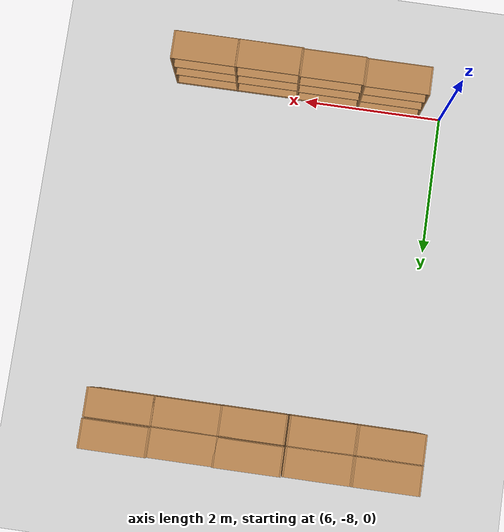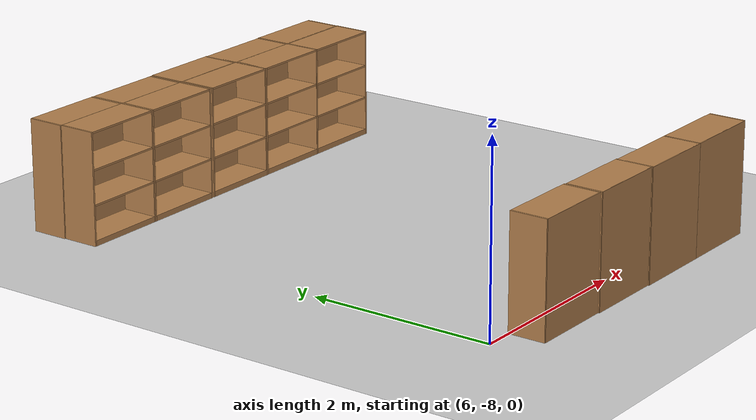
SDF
<sdf version="1.7">
 <world name="default">
  <model name="ground_plane">
   <static>1</static>
   <link name="ground_link">
    <collision name="collision">
     <geometry><plane><normal>0 0 1</normal><size>100 100</size></plane></geometry>
     <surface><friction><ode><mu>100</mu><mu2>50</mu2></ode></friction></surface>
    </collision>
    <visual name="visual">
     <cast_shadows>0</cast_shadows>
     <geometry><plane><normal>0 0 1</normal><size>100 100</size></plane></geometry>
     <material>
      <script><uri>file://media/materials/scripts/gazebo.material</uri><name>Gazebo/Grey</name></script>
     </material>
    </visual>
   </link>
  </model>
  <model name="bookshelf_clone_0_clone_0_clone_clone">
   <static>1</static>
   <link name="link">
    <inertial><mass>1</mass></inertial>
    <collision name="back">
     <pose>0 0.005 0.6 0 -0 0</pose>
     <geometry><box><size>0.9 0.01 1.2</size></box></geometry>
    </collision>
    <visual name="visual1">
     <pose>0 0.005 0.6 0 -0 0</pose>
     <geometry><box><size>0.9 0.01 1.2</size></box></geometry>
     <material>
      <script><uri>file://media/materials/scripts/gazebo.material</uri><name>Gazebo/Wood</name></script>
     </material>
    </visual>
    <collision name="left_side">
     <pose>0.45 -0.195 0.6 0 -0 0</pose>
     <geometry><box><size>0.02 0.4 1.2</size></box></geometry>
    </collision>
    <visual name="visual2">
     <pose>0.45 -0.195 0.6 0 -0 0</pose>
     <geometry><box><size>0.02 0.4 1.2</size></box></geometry>
     <material>
      <script><uri>file://media/materials/scripts/gazebo.material</uri><name>Gazebo/Wood</name></script>
     </material>
    </visual>
    <collision name="right_side">
     <pose>-0.45 -0.195 0.6 0 -0 0</pose>
     <geometry><box><size>0.02 0.4 1.2</size></box></geometry>
    </collision>
    <visual name="visual3">
     <pose>-0.45 -0.195 0.6 0 -0 0</pose>
     <geometry><box><size>0.02 0.4 1.2</size></box></geometry>
     <material>
      <script><uri>file://media/materials/scripts/gazebo.material</uri><name>Gazebo/Wood</name></script>
     </material>
    </visual>
    <collision name="bottom">
     <pose>0 -0.195 0.03 0 -0 0</pose>
     <geometry><box><size>0.88 0.4 0.06</size></box></geometry>
    </collision>
    <visual name="visual4">
     <pose>0 -0.195 0.03 0 -0 0</pose>
     <geometry><box><size>0.88 0.4 0.06</size></box></geometry>
     <material>
      <script><uri>file://media/materials/scripts/gazebo.material</uri><name>Gazebo/Wood</name></script>
     </material>
    </visual>
    <collision name="top">
     <pose>0 -0.195 1.19 0 -0 0</pose>
     <geometry><box><size>0.88 0.4 0.02</size></box></geometry>
    </collision>
    <visual name="visual5">
     <pose>0 -0.195 1.19 0 -0 0</pose>
     <geometry><box><size>0.88 0.4 0.02</size></box></geometry>
     <material>
      <script><uri>file://media/materials/scripts/gazebo.material</uri><name>Gazebo/Wood</name></script>
     </material>
    </visual>
    <collision name="low_shelf">
     <pose>0 -0.195 0.43 0 -0 0</pose>
     <geometry><box><size>0.88 0.4 0.02</size></box></geometry>
    </collision>
    <visual name="visual6">
     <pose>0 -0.195 0.43 0 -0 0</pose>
     <geometry><box><size>0.88 0.4 0.02</size></box></geometry>
     <material>
      <script><uri>file://media/materials/scripts/gazebo.material</uri><name>Gazebo/Wood</name></script>
     </material>
    </visual>
    <collision name="high_shelf">
     <pose>0 -0.195 0.8 0 -0 0</pose>
     <geometry><box><size>0.88 0.4 0.02</size></box></geometry>
    </collision>
    <visual name="visual7">
     <pose>0 -0.195 0.8 0 -0 0</pose>
     <geometry><box><size>0.88 0.4 0.02</size></box></geometry>
     <material>
      <script><uri>file://media/materials/scripts/gazebo.material</uri><name>Gazebo/Wood</name></script>
     </material>
    </visual>
   </link>
   <pose>8.09166 -2.97864 0 0 0 -3.14107</pose>
  </model>
  <model name="bookshelf_clone_0_clone_0_clone_clone_clone">
   <static>1</static>
   <link name="link">
    <inertial><mass>1</mass></inertial>
    <collision name="back">
     <pose>0 0.005 0.6 0 -0 0</pose>
     <geometry><box><size>0.9 0.01 1.2</size></box></geometry>
    </collision>
    <visual name="visual1">
     <pose>0 0.005 0.6 0 -0 0</pose>
     <geometry><box><size>0.9 0.01 1.2</size></box></geometry>
     <material>
      <script><uri>file://media/materials/scripts/gazebo.material</uri><name>Gazebo/Wood</name></script>
     </material>
    </visual>
    <collision name="left_side">
     <pose>0.45 -0.195 0.6 0 -0 0</pose>
     <geometry><box><size>0.02 0.4 1.2</size></box></geometry>
    </collision>
    <visual name="visual2">
     <pose>0.45 -0.195 0.6 0 -0 0</pose>
     <geometry><box><size>0.02 0.4 1.2</size></box></geometry>
     <material>
      <script><uri>file://media/materials/scripts/gazebo.material</uri><name>Gazebo/Wood</name></script>
     </material>
    </visual>
    <collision name="right_side">
     <pose>-0.45 -0.195 0.6 0 -0 0</pose>
     <geometry><box><size>0.02 0.4 1.2</size></box></geometry>
    </collision>
    <visual name="visual3">
     <pose>-0.45 -0.195 0.6 0 -0 0</pose>
     <geometry><box><size>0.02 0.4 1.2</size></box></geometry>
     <material>
      <script><uri>file://media/materials/scripts/gazebo.material</uri><name>Gazebo/Wood</name></script>
     </material>
    </visual>
    <collision name="bottom">
     <pose>0 -0.195 0.03 0 -0 0</pose>
     <geometry><box><size>0.88 0.4 0.06</size></box></geometry>
    </collision>
    <visual name="visual4">
     <pose>0 -0.195 0.03 0 -0 0</pose>
     <geometry><box><size>0.88 0.4 0.06</size></box></geometry>
     <material>
      <script><uri>file://media/materials/scripts/gazebo.material</uri><name>Gazebo/Wood</name></script>
     </material>
    </visual>
    <collision name="top">
     <pose>0 -0.195 1.19 0 -0 0</pose>
     <geometry><box><size>0.88 0.4 0.02</size></box></geometry>
    </collision>
    <visual name="visual5">
     <pose>0 -0.195 1.19 0 -0 0</pose>
     <geometry><box><size>0.88 0.4 0.02</size></box></geometry>
     <material>
      <script><uri>file://media/materials/scripts/gazebo.material</uri><name>Gazebo/Wood</name></script>
     </material>
    </visual>
    <collision name="low_shelf">
     <pose>0 -0.195 0.43 0 -0 0</pose>
     <geometry><box><size>0.88 0.4 0.02</size></box></geometry>
    </collision>
    <visual name="visual6">
     <pose>0 -0.195 0.43 0 -0 0</pose>
     <geometry><box><size>0.88 0.4 0.02</size></box></geometry>
     <material>
      <script><uri>file://media/materials/scripts/gazebo.material</uri><name>Gazebo/Wood</name></script>
     </material>
    </visual>
    <collision name="high_shelf">
     <pose>0 -0.195 0.8 0 -0 0</pose>
     <geometry><box><size>0.88 0.4 0.02</size></box></geometry>
    </collision>
    <visual name="visual7">
     <pose>0 -0.195 0.8 0 -0 0</pose>
     <geometry><box><size>0.88 0.4 0.02</size></box></geometry>
     <material>
      <script><uri>file://media/materials/scripts/gazebo.material</uri><name>Gazebo/Wood</name></script>
     </material>
    </visual>
   </link>
   <pose>6.23979 -2.98685 0 0 0 -3.14107</pose>
  </model>
  <model name="bookshelf_clone_0_clone_0_clone_clone_clone_clone">
   <static>1</static>
   <link name="link">
    <inertial><mass>1</mass></inertial>
    <collision name="back">
     <pose>0 0.005 0.6 0 -0 0</pose>
     <geometry><box><size>0.9 0.01 1.2</size></box></geometry>
    </collision>
    <visual name="visual1">
     <pose>0 0.005 0.6 0 -0 0</pose>
     <geometry><box><size>0.9 0.01 1.2</size></box></geometry>
     <material>
      <script><uri>file://media/materials/scripts/gazebo.material</uri><name>Gazebo/Wood</name></script>
     </material>
    </visual>
    <collision name="left_side">
     <pose>0.45 -0.195 0.6 0 -0 0</pose>
     <geometry><box><size>0.02 0.4 1.2</size></box></geometry>
    </collision>
    <visual name="visual2">
     <pose>0.45 -0.195 0.6 0 -0 0</pose>
     <geometry><box><size>0.02 0.4 1.2</size></box></geometry>
     <material>
      <script><uri>file://media/materials/scripts/gazebo.material</uri><name>Gazebo/Wood</name></script>
     </material>
    </visual>
    <collision name="right_side">
     <pose>-0.45 -0.195 0.6 0 -0 0</pose>
     <geometry><box><size>0.02 0.4 1.2</size></box></geometry>
    </collision>
    <visual name="visual3">
     <pose>-0.45 -0.195 0.6 0 -0 0</pose>
     <geometry><box><size>0.02 0.4 1.2</size></box></geometry>
     <material>
      <script><uri>file://media/materials/scripts/gazebo.material</uri><name>Gazebo/Wood</name></script>
     </material>
    </visual>
    <collision name="bottom">
     <pose>0 -0.195 0.03 0 -0 0</pose>
     <geometry><box><size>0.88 0.4 0.06</size></box></geometry>
    </collision>
    <visual name="visual4">
     <pose>0 -0.195 0.03 0 -0 0</pose>
     <geometry><box><size>0.88 0.4 0.06</size></box></geometry>
     <material>
      <script><uri>file://media/materials/scripts/gazebo.material</uri><name>Gazebo/Wood</name></script>
     </material>
    </visual>
    <collision name="top">
     <pose>0 -0.195 1.19 0 -0 0</pose>
     <geometry><box><size>0.88 0.4 0.02</size></box></geometry>
    </collision>
    <visual name="visual5">
     <pose>0 -0.195 1.19 0 -0 0</pose>
     <geometry><box><size>0.88 0.4 0.02</size></box></geometry>
     <material>
      <script><uri>file://media/materials/scripts/gazebo.material</uri><name>Gazebo/Wood</name></script>
     </material>
    </visual>
    <collision name="low_shelf">
     <pose>0 -0.195 0.43 0 -0 0</pose>
     <geometry><box><size>0.88 0.4 0.02</size></box></geometry>
    </collision>
    <visual name="visual6">
     <pose>0 -0.195 0.43 0 -0 0</pose>
     <geometry><box><size>0.88 0.4 0.02</size></box></geometry>
     <material>
      <script><uri>file://media/materials/scripts/gazebo.material</uri><name>Gazebo/Wood</name></script>
     </material>
    </visual>
    <collision name="high_shelf">
     <pose>0 -0.195 0.8 0 -0 0</pose>
     <geometry><box><size>0.88 0.4 0.02</size></box></geometry>
    </collision>
    <visual name="visual7">
     <pose>0 -0.195 0.8 0 -0 0</pose>
     <geometry><box><size>0.88 0.4 0.02</size></box></geometry>
     <material>
      <script><uri>file://media/materials/scripts/gazebo.material</uri><name>Gazebo/Wood</name></script>
     </material>
    </visual>
   </link>
   <pose>7.1578 -2.98828 0 0 0 -3.14107</pose>
  </model>
  <model name="bookshelf_clone_0_clone_0_clone_clone_clone_clone_clone_1_clone_clone_clone_clone_clone_clone_clone_clone_clone_clone_0_clone_clone_clone_clone_clone_0_clone_1_clone_2">
   <static>1</static>
   <link name="link">
    <inertial><mass>1</mass></inertial>
    <collision name="back">
     <pose>0 0.005 0.6 0 -0 0</pose>
     <geometry><box><size>0.9 0.01 1.2</size></box></geometry>
    </collision>
    <visual name="visual1">
     <pose>0 0.005 0.6 0 -0 0</pose>
     <geometry><box><size>0.9 0.01 1.2</size></box></geometry>
     <material>
      <script><uri>file://media/materials/scripts/gazebo.material</uri><name>Gazebo/Wood</name></script>
     </material>
    </visual>
    <collision name="left_side">
     <pose>0.45 -0.195 0.6 0 -0 0</pose>
     <geometry><box><size>0.02 0.4 1.2</size></box></geometry>
    </collision>
    <visual name="visual2">
     <pose>0.45 -0.195 0.6 0 -0 0</pose>
     <geometry><box><size>0.02 0.4 1.2</size></box></geometry>
     <material>
      <script><uri>file://media/materials/scripts/gazebo.material</uri><name>Gazebo/Wood</name></script>
     </material>
    </visual>
    <collision name="right_side">
     <pose>-0.45 -0.195 0.6 0 -0 0</pose>
     <geometry><box><size>0.02 0.4 1.2</size></box></geometry>
    </collision>
    <visual name="visual3">
     <pose>-0.45 -0.195 0.6 0 -0 0</pose>
     <geometry><box><size>0.02 0.4 1.2</size></box></geometry>
     <material>
      <script><uri>file://media/materials/scripts/gazebo.material</uri><name>Gazebo/Wood</name></script>
     </material>
    </visual>
    <collision name="bottom">
     <pose>0 -0.195 0.03 0 -0 0</pose>
     <geometry><box><size>0.88 0.4 0.06</size></box></geometry>
    </collision>
    <visual name="visual4">
     <pose>0 -0.195 0.03 0 -0 0</pose>
     <geometry><box><size>0.88 0.4 0.06</size></box></geometry>
     <material>
      <script><uri>file://media/materials/scripts/gazebo.material</uri><name>Gazebo/Wood</name></script>
     </material>
    </visual>
    <collision name="top">
     <pose>0 -0.195 1.19 0 -0 0</pose>
     <geometry><box><size>0.88 0.4 0.02</size></box></geometry>
    </collision>
    <visual name="visual5">
     <pose>0 -0.195 1.19 0 -0 0</pose>
     <geometry><box><size>0.88 0.4 0.02</size></box></geometry>
     <material>
      <script><uri>file://media/materials/scripts/gazebo.material</uri><name>Gazebo/Wood</name></script>
     </material>
    </visual>
    <collision name="low_shelf">
     <pose>0 -0.195 0.43 0 -0 0</pose>
     <geometry><box><size>0.88 0.4 0.02</size></box></geometry>
    </collision>
    <visual name="visual6">
     <pose>0 -0.195 0.43 0 -0 0</pose>
     <geometry><box><size>0.88 0.4 0.02</size></box></geometry>
     <material>
      <script><uri>file://media/materials/scripts/gazebo.material</uri><name>Gazebo/Wood</name></script>
     </material>
    </visual>
    <collision name="high_shelf">
     <pose>0 -0.195 0.8 0 -0 0</pose>
     <geometry><box><size>0.88 0.4 0.02</size></box></geometry>
    </collision>
    <visual name="visual7">
     <pose>0 -0.195 0.8 0 -0 0</pose>
     <geometry><box><size>0.88 0.4 0.02</size></box></geometry>
     <material>
      <script><uri>file://media/materials/scripts/gazebo.material</uri><name>Gazebo/Wood</name></script>
     </material>
    </visual>
   </link>
   <pose>6.24111 -3.009 0.004614 0 -0 0.000147</pose>
  </model>
  <model name="bookshelf_clone_0_clone_0_clone_clone_clone_clone_clone_1_clone_clone_clone_clone_clone_clone_clone_clone_clone_clone_0_clone_clone_clone_clone_clone_0_clone_1_clone_2_clone">
   <static>1</static>
   <link name="link">
    <inertial><mass>1</mass></inertial>
    <collision name="back">
     <pose>0 0.005 0.6 0 -0 0</pose>
     <geometry><box><size>0.9 0.01 1.2</size></box></geometry>
    </collision>
    <visual name="visual1">
     <pose>0 0.005 0.6 0 -0 0</pose>
     <geometry><box><size>0.9 0.01 1.2</size></box></geometry>
     <material>
      <script><uri>file://media/materials/scripts/gazebo.material</uri><name>Gazebo/Wood</name></script>
     </material>
    </visual>
    <collision name="left_side">
     <pose>0.45 -0.195 0.6 0 -0 0</pose>
     <geometry><box><size>0.02 0.4 1.2</size></box></geometry>
    </collision>
    <visual name="visual2">
     <pose>0.45 -0.195 0.6 0 -0 0</pose>
     <geometry><box><size>0.02 0.4 1.2</size></box></geometry>
     <material>
      <script><uri>file://media/materials/scripts/gazebo.material</uri><name>Gazebo/Wood</name></script>
     </material>
    </visual>
    <collision name="right_side">
     <pose>-0.45 -0.195 0.6 0 -0 0</pose>
     <geometry><box><size>0.02 0.4 1.2</size></box></geometry>
    </collision>
    <visual name="visual3">
     <pose>-0.45 -0.195 0.6 0 -0 0</pose>
     <geometry><box><size>0.02 0.4 1.2</size></box></geometry>
     <material>
      <script><uri>file://media/materials/scripts/gazebo.material</uri><name>Gazebo/Wood</name></script>
     </material>
    </visual>
    <collision name="bottom">
     <pose>0 -0.195 0.03 0 -0 0</pose>
     <geometry><box><size>0.88 0.4 0.06</size></box></geometry>
    </collision>
    <visual name="visual4">
     <pose>0 -0.195 0.03 0 -0 0</pose>
     <geometry><box><size>0.88 0.4 0.06</size></box></geometry>
     <material>
      <script><uri>file://media/materials/scripts/gazebo.material</uri><name>Gazebo/Wood</name></script>
     </material>
    </visual>
    <collision name="top">
     <pose>0 -0.195 1.19 0 -0 0</pose>
     <geometry><box><size>0.88 0.4 0.02</size></box></geometry>
    </collision>
    <visual name="visual5">
     <pose>0 -0.195 1.19 0 -0 0</pose>
     <geometry><box><size>0.88 0.4 0.02</size></box></geometry>
     <material>
      <script><uri>file://media/materials/scripts/gazebo.material</uri><name>Gazebo/Wood</name></script>
     </material>
    </visual>
    <collision name="low_shelf">
     <pose>0 -0.195 0.43 0 -0 0</pose>
     <geometry><box><size>0.88 0.4 0.02</size></box></geometry>
    </collision>
    <visual name="visual6">
     <pose>0 -0.195 0.43 0 -0 0</pose>
     <geometry><box><size>0.88 0.4 0.02</size></box></geometry>
     <material>
      <script><uri>file://media/materials/scripts/gazebo.material</uri><name>Gazebo/Wood</name></script>
     </material>
    </visual>
    <collision name="high_shelf">
     <pose>0 -0.195 0.8 0 -0 0</pose>
     <geometry><box><size>0.88 0.4 0.02</size></box></geometry>
    </collision>
    <visual name="visual7">
     <pose>0 -0.195 0.8 0 -0 0</pose>
     <geometry><box><size>0.88 0.4 0.02</size></box></geometry>
     <material>
      <script><uri>file://media/materials/scripts/gazebo.material</uri><name>Gazebo/Wood</name></script>
     </material>
    </visual>
   </link>
   <pose>7.15854 -3.009 0.004614 0 -0 0.000147</pose>
  </model>
  <model name="bookshelf_clone_0_clone_0_clone_clone_clone_clone_clone_1_clone_clone_clone_clone_clone_clone_clone_clone_clone_clone_0_clone_clone_clone_clone_clone_0_clone_1_clone_2_clone_0">
   <static>1</static>
   <link name="link">
    <inertial><mass>1</mass></inertial>
    <collision name="back">
     <pose>0 0.005 0.6 0 -0 0</pose>
     <geometry><box><size>0.9 0.01 1.2</size></box></geometry>
    </collision>
    <visual name="visual1">
     <pose>0 0.005 0.6 0 -0 0</pose>
     <geometry><box><size>0.9 0.01 1.2</size></box></geometry>
     <material>
      <script><uri>file://media/materials/scripts/gazebo.material</uri><name>Gazebo/Wood</name></script>
     </material>
    </visual>
    <collision name="left_side">
     <pose>0.45 -0.195 0.6 0 -0 0</pose>
     <geometry><box><size>0.02 0.4 1.2</size></box></geometry>
    </collision>
    <visual name="visual2">
     <pose>0.45 -0.195 0.6 0 -0 0</pose>
     <geometry><box><size>0.02 0.4 1.2</size></box></geometry>
     <material>
      <script><uri>file://media/materials/scripts/gazebo.material</uri><name>Gazebo/Wood</name></script>
     </material>
    </visual>
    <collision name="right_side">
     <pose>-0.45 -0.195 0.6 0 -0 0</pose>
     <geometry><box><size>0.02 0.4 1.2</size></box></geometry>
    </collision>
    <visual name="visual3">
     <pose>-0.45 -0.195 0.6 0 -0 0</pose>
     <geometry><box><size>0.02 0.4 1.2</size></box></geometry>
     <material>
      <script><uri>file://media/materials/scripts/gazebo.material</uri><name>Gazebo/Wood</name></script>
     </material>
    </visual>
    <collision name="bottom">
     <pose>0 -0.195 0.03 0 -0 0</pose>
     <geometry><box><size>0.88 0.4 0.06</size></box></geometry>
    </collision>
    <visual name="visual4">
     <pose>0 -0.195 0.03 0 -0 0</pose>
     <geometry><box><size>0.88 0.4 0.06</size></box></geometry>
     <material>
      <script><uri>file://media/materials/scripts/gazebo.material</uri><name>Gazebo/Wood</name></script>
     </material>
    </visual>
    <collision name="top">
     <pose>0 -0.195 1.19 0 -0 0</pose>
     <geometry><box><size>0.88 0.4 0.02</size></box></geometry>
    </collision>
    <visual name="visual5">
     <pose>0 -0.195 1.19 0 -0 0</pose>
     <geometry><box><size>0.88 0.4 0.02</size></box></geometry>
     <material>
      <script><uri>file://media/materials/scripts/gazebo.material</uri><name>Gazebo/Wood</name></script>
     </material>
    </visual>
    <collision name="low_shelf">
     <pose>0 -0.195 0.43 0 -0 0</pose>
     <geometry><box><size>0.88 0.4 0.02</size></box></geometry>
    </collision>
    <visual name="visual6">
     <pose>0 -0.195 0.43 0 -0 0</pose>
     <geometry><box><size>0.88 0.4 0.02</size></box></geometry>
     <material>
      <script><uri>file://media/materials/scripts/gazebo.material</uri><name>Gazebo/Wood</name></script>
     </material>
    </visual>
    <collision name="high_shelf">
     <pose>0 -0.195 0.8 0 -0 0</pose>
     <geometry><box><size>0.88 0.4 0.02</size></box></geometry>
    </collision>
    <visual name="visual7">
     <pose>0 -0.195 0.8 0 -0 0</pose>
     <geometry><box><size>0.88 0.4 0.02</size></box></geometry>
     <material>
      <script><uri>file://media/materials/scripts/gazebo.material</uri><name>Gazebo/Wood</name></script>
     </material>
    </visual>
   </link>
   <pose>8.09797 -3.009 0.004614 0 -0 0.000147</pose>
  </model>
  <model name="bookshelf_clone_0_clone_0_clone_clone_clone_clone_clone_1_clone_clone_clone_clone_clone_clone_clone_clone_clone_clone_0_clone_clone_clone_clone_clone_0_clone_1_clone_2_clone_0_clone">
   <static>1</static>
   <link name="link">
    <inertial><mass>1</mass></inertial>
    <collision name="back">
     <pose>0 0.005 0.6 0 -0 0</pose>
     <geometry><box><size>0.9 0.01 1.2</size></box></geometry>
    </collision>
    <visual name="visual1">
     <pose>0 0.005 0.6 0 -0 0</pose>
     <geometry><box><size>0.9 0.01 1.2</size></box></geometry>
     <material>
      <script><uri>file://media/materials/scripts/gazebo.material</uri><name>Gazebo/Wood</name></script>
     </material>
    </visual>
    <collision name="left_side">
     <pose>0.45 -0.195 0.6 0 -0 0</pose>
     <geometry><box><size>0.02 0.4 1.2</size></box></geometry>
    </collision>
    <visual name="visual2">
     <pose>0.45 -0.195 0.6 0 -0 0</pose>
     <geometry><box><size>0.02 0.4 1.2</size></box></geometry>
     <material>
      <script><uri>file://media/materials/scripts/gazebo.material</uri><name>Gazebo/Wood</name></script>
     </material>
    </visual>
    <collision name="right_side">
     <pose>-0.45 -0.195 0.6 0 -0 0</pose>
     <geometry><box><size>0.02 0.4 1.2</size></box></geometry>
    </collision>
    <visual name="visual3">
     <pose>-0.45 -0.195 0.6 0 -0 0</pose>
     <geometry><box><size>0.02 0.4 1.2</size></box></geometry>
     <material>
      <script><uri>file://media/materials/scripts/gazebo.material</uri><name>Gazebo/Wood</name></script>
     </material>
    </visual>
    <collision name="bottom">
     <pose>0 -0.195 0.03 0 -0 0</pose>
     <geometry><box><size>0.88 0.4 0.06</size></box></geometry>
    </collision>
    <visual name="visual4">
     <pose>0 -0.195 0.03 0 -0 0</pose>
     <geometry><box><size>0.88 0.4 0.06</size></box></geometry>
     <material>
      <script><uri>file://media/materials/scripts/gazebo.material</uri><name>Gazebo/Wood</name></script>
     </material>
    </visual>
    <collision name="top">
     <pose>0 -0.195 1.19 0 -0 0</pose>
     <geometry><box><size>0.88 0.4 0.02</size></box></geometry>
    </collision>
    <visual name="visual5">
     <pose>0 -0.195 1.19 0 -0 0</pose>
     <geometry><box><size>0.88 0.4 0.02</size></box></geometry>
     <material>
      <script><uri>file://media/materials/scripts/gazebo.material</uri><name>Gazebo/Wood</name></script>
     </material>
    </visual>
    <collision name="low_shelf">
     <pose>0 -0.195 0.43 0 -0 0</pose>
     <geometry><box><size>0.88 0.4 0.02</size></box></geometry>
    </collision>
    <visual name="visual6">
     <pose>0 -0.195 0.43 0 -0 0</pose>
     <geometry><box><size>0.88 0.4 0.02</size></box></geometry>
     <material>
      <script><uri>file://media/materials/scripts/gazebo.material</uri><name>Gazebo/Wood</name></script>
     </material>
    </visual>
    <collision name="high_shelf">
     <pose>0 -0.195 0.8 0 -0 0</pose>
     <geometry><box><size>0.88 0.4 0.02</size></box></geometry>
    </collision>
    <visual name="visual7">
     <pose>0 -0.195 0.8 0 -0 0</pose>
     <geometry><box><size>0.88 0.4 0.02</size></box></geometry>
     <material>
      <script><uri>file://media/materials/scripts/gazebo.material</uri><name>Gazebo/Wood</name></script>
     </material>
    </visual>
   </link>
   <pose>8.98045 -3.00741 0.004614 0 -0 0.000147</pose>
  </model>
  <model name="bookshelf_clone_0_clone_0_clone_clone_clone_0">
   <static>1</static>
   <link name="link">
    <inertial><mass>1</mass></inertial>
    <collision name="back">
     <pose>0 0.005 0.6 0 -0 0</pose>
     <geometry><box><size>0.9 0.01 1.2</size></box></geometry>
    </collision>
    <visual name="visual1">
     <pose>0 0.005 0.6 0 -0 0</pose>
     <geometry><box><size>0.9 0.01 1.2</size></box></geometry>
     <material>
      <script><uri>file://media/materials/scripts/gazebo.material</uri><name>Gazebo/Wood</name></script>
     </material>
    </visual>
    <collision name="left_side">
     <pose>0.45 -0.195 0.6 0 -0 0</pose>
     <geometry><box><size>0.02 0.4 1.2</size></box></geometry>
    </collision>
    <visual name="visual2">
     <pose>0.45 -0.195 0.6 0 -0 0</pose>
     <geometry><box><size>0.02 0.4 1.2</size></box></geometry>
     <material>
      <script><uri>file://media/materials/scripts/gazebo.material</uri><name>Gazebo/Wood</name></script>
     </material>
    </visual>
    <collision name="right_side">
     <pose>-0.45 -0.195 0.6 0 -0 0</pose>
     <geometry><box><size>0.02 0.4 1.2</size></box></geometry>
    </collision>
    <visual name="visual3">
     <pose>-0.45 -0.195 0.6 0 -0 0</pose>
     <geometry><box><size>0.02 0.4 1.2</size></box></geometry>
     <material>
      <script><uri>file://media/materials/scripts/gazebo.material</uri><name>Gazebo/Wood</name></script>
     </material>
    </visual>
    <collision name="bottom">
     <pose>0 -0.195 0.03 0 -0 0</pose>
     <geometry><box><size>0.88 0.4 0.06</size></box></geometry>
    </collision>
    <visual name="visual4">
     <pose>0 -0.195 0.03 0 -0 0</pose>
     <geometry><box><size>0.88 0.4 0.06</size></box></geometry>
     <material>
      <script><uri>file://media/materials/scripts/gazebo.material</uri><name>Gazebo/Wood</name></script>
     </material>
    </visual>
    <collision name="top">
     <pose>0 -0.195 1.19 0 -0 0</pose>
     <geometry><box><size>0.88 0.4 0.02</size></box></geometry>
    </collision>
    <visual name="visual5">
     <pose>0 -0.195 1.19 0 -0 0</pose>
     <geometry><box><size>0.88 0.4 0.02</size></box></geometry>
     <material>
      <script><uri>file://media/materials/scripts/gazebo.material</uri><name>Gazebo/Wood</name></script>
     </material>
    </visual>
    <collision name="low_shelf">
     <pose>0 -0.195 0.43 0 -0 0</pose>
     <geometry><box><size>0.88 0.4 0.02</size></box></geometry>
    </collision>
    <visual name="visual6">
     <pose>0 -0.195 0.43 0 -0 0</pose>
     <geometry><box><size>0.88 0.4 0.02</size></box></geometry>
     <material>
      <script><uri>file://media/materials/scripts/gazebo.material</uri><name>Gazebo/Wood</name></script>
     </material>
    </visual>
    <collision name="high_shelf">
     <pose>0 -0.195 0.8 0 -0 0</pose>
     <geometry><box><size>0.88 0.4 0.02</size></box></geometry>
    </collision>
    <visual name="visual7">
     <pose>0 -0.195 0.8 0 -0 0</pose>
     <geometry><box><size>0.88 0.4 0.02</size></box></geometry>
     <material>
      <script><uri>file://media/materials/scripts/gazebo.material</uri><name>Gazebo/Wood</name></script>
     </material>
    </visual>
   </link>
   <pose>8.97687 -2.98648 0 0 0 -3.14107</pose>
  </model>
  <model name="bookshelf_clone_clone_1_clone_clone_0_clone_clone">
   <static>1</static>
   <link name="link">
    <inertial><mass>1</mass></inertial>
    <collision name="back">
     <pose>0 0.005 0.6 0 -0 0</pose>
     <geometry><box><size>0.9 0.01 1.2</size></box></geometry>
    </collision>
    <visual name="visual1">
     <pose>0 0.005 0.6 0 -0 0</pose>
     <geometry><box><size>0.9 0.01 1.2</size></box></geometry>
     <material>
      <script><uri>file://media/materials/scripts/gazebo.material</uri><name>Gazebo/Wood</name></script>
     </material>
    </visual>
    <collision name="left_side">
     <pose>0.45 -0.195 0.6 0 -0 0</pose>
     <geometry><box><size>0.02 0.4 1.2</size></box></geometry>
    </collision>
    <visual name="visual2">
     <pose>0.45 -0.195 0.6 0 -0 0</pose>
     <geometry><box><size>0.02 0.4 1.2</size></box></geometry>
     <material>
      <script><uri>file://media/materials/scripts/gazebo.material</uri><name>Gazebo/Wood</name></script>
     </material>
    </visual>
    <collision name="right_side">
     <pose>-0.45 -0.195 0.6 0 -0 0</pose>
     <geometry><box><size>0.02 0.4 1.2</size></box></geometry>
    </collision>
    <visual name="visual3">
     <pose>-0.45 -0.195 0.6 0 -0 0</pose>
     <geometry><box><size>0.02 0.4 1.2</size></box></geometry>
     <material>
      <script><uri>file://media/materials/scripts/gazebo.material</uri><name>Gazebo/Wood</name></script>
     </material>
    </visual>
    <collision name="bottom">
     <pose>0 -0.195 0.03 0 -0 0</pose>
     <geometry><box><size>0.88 0.4 0.06</size></box></geometry>
    </collision>
    <visual name="visual4">
     <pose>0 -0.195 0.03 0 -0 0</pose>
     <geometry><box><size>0.88 0.4 0.06</size></box></geometry>
     <material>
      <script><uri>file://media/materials/scripts/gazebo.material</uri><name>Gazebo/Wood</name></script>
     </material>
    </visual>
    <collision name="top">
     <pose>0 -0.195 1.19 0 -0 0</pose>
     <geometry><box><size>0.88 0.4 0.02</size></box></geometry>
    </collision>
    <visual name="visual5">
     <pose>0 -0.195 1.19 0 -0 0</pose>
     <geometry><box><size>0.88 0.4 0.02</size></box></geometry>
     <material>
      <script><uri>file://media/materials/scripts/gazebo.material</uri><name>Gazebo/Wood</name></script>
     </material>
    </visual>
    <collision name="low_shelf">
     <pose>0 -0.195 0.43 0 -0 0</pose>
     <geometry><box><size>0.88 0.4 0.02</size></box></geometry>
    </collision>
    <visual name="visual6">
     <pose>0 -0.195 0.43 0 -0 0</pose>
     <geometry><box><size>0.88 0.4 0.02</size></box></geometry>
     <material>
      <script><uri>file://media/materials/scripts/gazebo.material</uri><name>Gazebo/Wood</name></script>
     </material>
    </visual>
    <collision name="high_shelf">
     <pose>0 -0.195 0.8 0 -0 0</pose>
     <geometry><box><size>0.88 0.4 0.02</size></box></geometry>
    </collision>
    <visual name="visual7">
     <pose>0 -0.195 0.8 0 -0 0</pose>
     <geometry><box><size>0.88 0.4 0.02</size></box></geometry>
     <material>
      <script><uri>file://media/materials/scripts/gazebo.material</uri><name>Gazebo/Wood</name></script>
     </material>
    </visual>
   </link>
   <pose>6.76746 -8.38719 0 0 0 -3.14107</pose>
  </model>
  <model name="bookshelf_clone_clone_1_clone_clone_0_clone_clone_0">
   <static>1</static>
   <link name="link">
    <inertial><mass>1</mass></inertial>
    <collision name="back">
     <pose>0 0.005 0.6 0 -0 0</pose>
     <geometry><box><size>0.9 0.01 1.2</size></box></geometry>
    </collision>
    <visual name="visual1">
     <pose>0 0.005 0.6 0 -0 0</pose>
     <geometry><box><size>0.9 0.01 1.2</size></box></geometry>
     <material>
      <script><uri>file://media/materials/scripts/gazebo.material</uri><name>Gazebo/Wood</name></script>
     </material>
    </visual>
    <collision name="left_side">
     <pose>0.45 -0.195 0.6 0 -0 0</pose>
     <geometry><box><size>0.02 0.4 1.2</size></box></geometry>
    </collision>
    <visual name="visual2">
     <pose>0.45 -0.195 0.6 0 -0 0</pose>
     <geometry><box><size>0.02 0.4 1.2</size></box></geometry>
     <material>
      <script><uri>file://media/materials/scripts/gazebo.material</uri><name>Gazebo/Wood</name></script>
     </material>
    </visual>
    <collision name="right_side">
     <pose>-0.45 -0.195 0.6 0 -0 0</pose>
     <geometry><box><size>0.02 0.4 1.2</size></box></geometry>
    </collision>
    <visual name="visual3">
     <pose>-0.45 -0.195 0.6 0 -0 0</pose>
     <geometry><box><size>0.02 0.4 1.2</size></box></geometry>
     <material>
      <script><uri>file://media/materials/scripts/gazebo.material</uri><name>Gazebo/Wood</name></script>
     </material>
    </visual>
    <collision name="bottom">
     <pose>0 -0.195 0.03 0 -0 0</pose>
     <geometry><box><size>0.88 0.4 0.06</size></box></geometry>
    </collision>
    <visual name="visual4">
     <pose>0 -0.195 0.03 0 -0 0</pose>
     <geometry><box><size>0.88 0.4 0.06</size></box></geometry>
     <material>
      <script><uri>file://media/materials/scripts/gazebo.material</uri><name>Gazebo/Wood</name></script>
     </material>
    </visual>
    <collision name="top">
     <pose>0 -0.195 1.19 0 -0 0</pose>
     <geometry><box><size>0.88 0.4 0.02</size></box></geometry>
    </collision>
    <visual name="visual5">
     <pose>0 -0.195 1.19 0 -0 0</pose>
     <geometry><box><size>0.88 0.4 0.02</size></box></geometry>
     <material>
      <script><uri>file://media/materials/scripts/gazebo.material</uri><name>Gazebo/Wood</name></script>
     </material>
    </visual>
    <collision name="low_shelf">
     <pose>0 -0.195 0.43 0 -0 0</pose>
     <geometry><box><size>0.88 0.4 0.02</size></box></geometry>
    </collision>
    <visual name="visual6">
     <pose>0 -0.195 0.43 0 -0 0</pose>
     <geometry><box><size>0.88 0.4 0.02</size></box></geometry>
     <material>
      <script><uri>file://media/materials/scripts/gazebo.material</uri><name>Gazebo/Wood</name></script>
     </material>
    </visual>
    <collision name="high_shelf">
     <pose>0 -0.195 0.8 0 -0 0</pose>
     <geometry><box><size>0.88 0.4 0.02</size></box></geometry>
    </collision>
    <visual name="visual7">
     <pose>0 -0.195 0.8 0 -0 0</pose>
     <geometry><box><size>0.88 0.4 0.02</size></box></geometry>
     <material>
      <script><uri>file://media/materials/scripts/gazebo.material</uri><name>Gazebo/Wood</name></script>
     </material>
    </visual>
   </link>
   <pose>7.68281 -8.40007 0 0 0 -3.14107</pose>
  </model>
  <model name="bookshelf_clone_clone_1_clone_clone_0_clone_clone_1">
   <static>1</static>
   <link name="link">
    <inertial><mass>1</mass></inertial>
    <collision name="back">
     <pose>0 0.005 0.6 0 -0 0</pose>
     <geometry><box><size>0.9 0.01 1.2</size></box></geometry>
    </collision>
    <visual name="visual1">
     <pose>0 0.005 0.6 0 -0 0</pose>
     <geometry><box><size>0.9 0.01 1.2</size></box></geometry>
     <material>
      <script><uri>file://media/materials/scripts/gazebo.material</uri><name>Gazebo/Wood</name></script>
     </material>
    </visual>
    <collision name="left_side">
     <pose>0.45 -0.195 0.6 0 -0 0</pose>
     <geometry><box><size>0.02 0.4 1.2</size></box></geometry>
    </collision>
    <visual name="visual2">
     <pose>0.45 -0.195 0.6 0 -0 0</pose>
     <geometry><box><size>0.02 0.4 1.2</size></box></geometry>
     <material>
      <script><uri>file://media/materials/scripts/gazebo.material</uri><name>Gazebo/Wood</name></script>
     </material>
    </visual>
    <collision name="right_side">
     <pose>-0.45 -0.195 0.6 0 -0 0</pose>
     <geometry><box><size>0.02 0.4 1.2</size></box></geometry>
    </collision>
    <visual name="visual3">
     <pose>-0.45 -0.195 0.6 0 -0 0</pose>
     <geometry><box><size>0.02 0.4 1.2</size></box></geometry>
     <material>
      <script><uri>file://media/materials/scripts/gazebo.material</uri><name>Gazebo/Wood</name></script>
     </material>
    </visual>
    <collision name="bottom">
     <pose>0 -0.195 0.03 0 -0 0</pose>
     <geometry><box><size>0.88 0.4 0.06</size></box></geometry>
    </collision>
    <visual name="visual4">
     <pose>0 -0.195 0.03 0 -0 0</pose>
     <geometry><box><size>0.88 0.4 0.06</size></box></geometry>
     <material>
      <script><uri>file://media/materials/scripts/gazebo.material</uri><name>Gazebo/Wood</name></script>
     </material>
    </visual>
    <collision name="top">
     <pose>0 -0.195 1.19 0 -0 0</pose>
     <geometry><box><size>0.88 0.4 0.02</size></box></geometry>
    </collision>
    <visual name="visual5">
     <pose>0 -0.195 1.19 0 -0 0</pose>
     <geometry><box><size>0.88 0.4 0.02</size></box></geometry>
     <material>
      <script><uri>file://media/materials/scripts/gazebo.material</uri><name>Gazebo/Wood</name></script>
     </material>
    </visual>
    <collision name="low_shelf">
     <pose>0 -0.195 0.43 0 -0 0</pose>
     <geometry><box><size>0.88 0.4 0.02</size></box></geometry>
    </collision>
    <visual name="visual6">
     <pose>0 -0.195 0.43 0 -0 0</pose>
     <geometry><box><size>0.88 0.4 0.02</size></box></geometry>
     <material>
      <script><uri>file://media/materials/scripts/gazebo.material</uri><name>Gazebo/Wood</name></script>
     </material>
    </visual>
    <collision name="high_shelf">
     <pose>0 -0.195 0.8 0 -0 0</pose>
     <geometry><box><size>0.88 0.4 0.02</size></box></geometry>
    </collision>
    <visual name="visual7">
     <pose>0 -0.195 0.8 0 -0 0</pose>
     <geometry><box><size>0.88 0.4 0.02</size></box></geometry>
     <material>
      <script><uri>file://media/materials/scripts/gazebo.material</uri><name>Gazebo/Wood</name></script>
     </material>
    </visual>
   </link>
   <pose>8.5716 -8.41209 0 0 0 -3.14107</pose>
  </model>
  <model name="bookshelf_clone_clone_1_clone_clone_0_clone_clone_2">
   <static>1</static>
   <link name="link">
    <inertial><mass>1</mass></inertial>
    <collision name="back">
     <pose>0 0.005 0.6 0 -0 0</pose>
     <geometry><box><size>0.9 0.01 1.2</size></box></geometry>
    </collision>
    <visual name="visual1">
     <pose>0 0.005 0.6 0 -0 0</pose>
     <geometry><box><size>0.9 0.01 1.2</size></box></geometry>
     <material>
      <script><uri>file://media/materials/scripts/gazebo.material</uri><name>Gazebo/Wood</name></script>
     </material>
    </visual>
    <collision name="left_side">
     <pose>0.45 -0.195 0.6 0 -0 0</pose>
     <geometry><box><size>0.02 0.4 1.2</size></box></geometry>
    </collision>
    <visual name="visual2">
     <pose>0.45 -0.195 0.6 0 -0 0</pose>
     <geometry><box><size>0.02 0.4 1.2</size></box></geometry>
     <material>
      <script><uri>file://media/materials/scripts/gazebo.material</uri><name>Gazebo/Wood</name></script>
     </material>
    </visual>
    <collision name="right_side">
     <pose>-0.45 -0.195 0.6 0 -0 0</pose>
     <geometry><box><size>0.02 0.4 1.2</size></box></geometry>
    </collision>
    <visual name="visual3">
     <pose>-0.45 -0.195 0.6 0 -0 0</pose>
     <geometry><box><size>0.02 0.4 1.2</size></box></geometry>
     <material>
      <script><uri>file://media/materials/scripts/gazebo.material</uri><name>Gazebo/Wood</name></script>
     </material>
    </visual>
    <collision name="bottom">
     <pose>0 -0.195 0.03 0 -0 0</pose>
     <geometry><box><size>0.88 0.4 0.06</size></box></geometry>
    </collision>
    <visual name="visual4">
     <pose>0 -0.195 0.03 0 -0 0</pose>
     <geometry><box><size>0.88 0.4 0.06</size></box></geometry>
     <material>
      <script><uri>file://media/materials/scripts/gazebo.material</uri><name>Gazebo/Wood</name></script>
     </material>
    </visual>
    <collision name="top">
     <pose>0 -0.195 1.19 0 -0 0</pose>
     <geometry><box><size>0.88 0.4 0.02</size></box></geometry>
    </collision>
    <visual name="visual5">
     <pose>0 -0.195 1.19 0 -0 0</pose>
     <geometry><box><size>0.88 0.4 0.02</size></box></geometry>
     <material>
      <script><uri>file://media/materials/scripts/gazebo.material</uri><name>Gazebo/Wood</name></script>
     </material>
    </visual>
    <collision name="low_shelf">
     <pose>0 -0.195 0.43 0 -0 0</pose>
     <geometry><box><size>0.88 0.4 0.02</size></box></geometry>
    </collision>
    <visual name="visual6">
     <pose>0 -0.195 0.43 0 -0 0</pose>
     <geometry><box><size>0.88 0.4 0.02</size></box></geometry>
     <material>
      <script><uri>file://media/materials/scripts/gazebo.material</uri><name>Gazebo/Wood</name></script>
     </material>
    </visual>
    <collision name="high_shelf">
     <pose>0 -0.195 0.8 0 -0 0</pose>
     <geometry><box><size>0.88 0.4 0.02</size></box></geometry>
    </collision>
    <visual name="visual7">
     <pose>0 -0.195 0.8 0 -0 0</pose>
     <geometry><box><size>0.88 0.4 0.02</size></box></geometry>
     <material>
      <script><uri>file://media/materials/scripts/gazebo.material</uri><name>Gazebo/Wood</name></script>
     </material>
    </visual>
   </link>
   <pose>9.47375 -8.4111 0 0 0 -3.14107</pose>
  </model>
  <model name="bookshelf_clone_0_clone_0_clone_clone_clone_0_clone">
   <static>1</static>
   <link name="link">
    <inertial><mass>1</mass></inertial>
    <collision name="back">
     <pose>0 0.005 0.6 0 -0 0</pose>
     <geometry><box><size>0.9 0.01 1.2</size></box></geometry>
    </collision>
    <visual name="visual1">
     <pose>0 0.005 0.6 0 -0 0</pose>
     <geometry><box><size>0.9 0.01 1.2</size></box></geometry>
     <material>
      <script><uri>file://media/materials/scripts/gazebo.material</uri><name>Gazebo/Wood</name></script>
     </material>
    </visual>
    <collision name="left_side">
     <pose>0.45 -0.195 0.6 0 -0 0</pose>
     <geometry><box><size>0.02 0.4 1.2</size></box></geometry>
    </collision>
    <visual name="visual2">
     <pose>0.45 -0.195 0.6 0 -0 0</pose>
     <geometry><box><size>0.02 0.4 1.2</size></box></geometry>
     <material>
      <script><uri>file://media/materials/scripts/gazebo.material</uri><name>Gazebo/Wood</name></script>
     </material>
    </visual>
    <collision name="right_side">
     <pose>-0.45 -0.195 0.6 0 -0 0</pose>
     <geometry><box><size>0.02 0.4 1.2</size></box></geometry>
    </collision>
    <visual name="visual3">
     <pose>-0.45 -0.195 0.6 0 -0 0</pose>
     <geometry><box><size>0.02 0.4 1.2</size></box></geometry>
     <material>
      <script><uri>file://media/materials/scripts/gazebo.material</uri><name>Gazebo/Wood</name></script>
     </material>
    </visual>
    <collision name="bottom">
     <pose>0 -0.195 0.03 0 -0 0</pose>
     <geometry><box><size>0.88 0.4 0.06</size></box></geometry>
    </collision>
    <visual name="visual4">
     <pose>0 -0.195 0.03 0 -0 0</pose>
     <geometry><box><size>0.88 0.4 0.06</size></box></geometry>
     <material>
      <script><uri>file://media/materials/scripts/gazebo.material</uri><name>Gazebo/Wood</name></script>
     </material>
    </visual>
    <collision name="top">
     <pose>0 -0.195 1.19 0 -0 0</pose>
     <geometry><box><size>0.88 0.4 0.02</size></box></geometry>
    </collision>
    <visual name="visual5">
     <pose>0 -0.195 1.19 0 -0 0</pose>
     <geometry><box><size>0.88 0.4 0.02</size></box></geometry>
     <material>
      <script><uri>file://media/materials/scripts/gazebo.material</uri><name>Gazebo/Wood</name></script>
     </material>
    </visual>
    <collision name="low_shelf">
     <pose>0 -0.195 0.43 0 -0 0</pose>
     <geometry><box><size>0.88 0.4 0.02</size></box></geometry>
    </collision>
    <visual name="visual6">
     <pose>0 -0.195 0.43 0 -0 0</pose>
     <geometry><box><size>0.88 0.4 0.02</size></box></geometry>
     <material>
      <script><uri>file://media/materials/scripts/gazebo.material</uri><name>Gazebo/Wood</name></script>
     </material>
    </visual>
    <collision name="high_shelf">
     <pose>0 -0.195 0.8 0 -0 0</pose>
     <geometry><box><size>0.88 0.4 0.02</size></box></geometry>
    </collision>
    <visual name="visual7">
     <pose>0 -0.195 0.8 0 -0 0</pose>
     <geometry><box><size>0.88 0.4 0.02</size></box></geometry>
     <material>
      <script><uri>file://media/materials/scripts/gazebo.material</uri><name>Gazebo/Wood</name></script>
     </material>
    </visual>
   </link>
   <pose>9.89072 -2.97807 0 0 0 -3.14107</pose>
  </model>
  <model name="bookshelf_clone_0_clone_0_clone_clone_clone_clone_clone_1_clone_clone_clone_clone_clone_clone_clone_clone_clone_clone_0_clone_clone_clone_clone_clone_0_clone_1_clone_2_clone_0_clone_clone">
   <static>1</static>
   <link name="link">
    <inertial><mass>1</mass></inertial>
    <collision name="back">
     <pose>0 0.005 0.6 0 -0 0</pose>
     <geometry><box><size>0.9 0.01 1.2</size></box></geometry>
    </collision>
    <visual name="visual1">
     <pose>0 0.005 0.6 0 -0 0</pose>
     <geometry><box><size>0.9 0.01 1.2</size></box></geometry>
     <material>
      <script><uri>file://media/materials/scripts/gazebo.material</uri><name>Gazebo/Wood</name></script>
     </material>
    </visual>
    <collision name="left_side">
     <pose>0.45 -0.195 0.6 0 -0 0</pose>
     <geometry><box><size>0.02 0.4 1.2</size></box></geometry>
    </collision>
    <visual name="visual2">
     <pose>0.45 -0.195 0.6 0 -0 0</pose>
     <geometry><box><size>0.02 0.4 1.2</size></box></geometry>
     <material>
      <script><uri>file://media/materials/scripts/gazebo.material</uri><name>Gazebo/Wood</name></script>
     </material>
    </visual>
    <collision name="right_side">
     <pose>-0.45 -0.195 0.6 0 -0 0</pose>
     <geometry><box><size>0.02 0.4 1.2</size></box></geometry>
    </collision>
    <visual name="visual3">
     <pose>-0.45 -0.195 0.6 0 -0 0</pose>
     <geometry><box><size>0.02 0.4 1.2</size></box></geometry>
     <material>
      <script><uri>file://media/materials/scripts/gazebo.material</uri><name>Gazebo/Wood</name></script>
     </material>
    </visual>
    <collision name="bottom">
     <pose>0 -0.195 0.03 0 -0 0</pose>
     <geometry><box><size>0.88 0.4 0.06</size></box></geometry>
    </collision>
    <visual name="visual4">
     <pose>0 -0.195 0.03 0 -0 0</pose>
     <geometry><box><size>0.88 0.4 0.06</size></box></geometry>
     <material>
      <script><uri>file://media/materials/scripts/gazebo.material</uri><name>Gazebo/Wood</name></script>
     </material>
    </visual>
    <collision name="top">
     <pose>0 -0.195 1.19 0 -0 0</pose>
     <geometry><box><size>0.88 0.4 0.02</size></box></geometry>
    </collision>
    <visual name="visual5">
     <pose>0 -0.195 1.19 0 -0 0</pose>
     <geometry><box><size>0.88 0.4 0.02</size></box></geometry>
     <material>
      <script><uri>file://media/materials/scripts/gazebo.material</uri><name>Gazebo/Wood</name></script>
     </material>
    </visual>
    <collision name="low_shelf">
     <pose>0 -0.195 0.43 0 -0 0</pose>
     <geometry><box><size>0.88 0.4 0.02</size></box></geometry>
    </collision>
    <visual name="visual6">
     <pose>0 -0.195 0.43 0 -0 0</pose>
     <geometry><box><size>0.88 0.4 0.02</size></box></geometry>
     <material>
      <script><uri>file://media/materials/scripts/gazebo.material</uri><name>Gazebo/Wood</name></script>
     </material>
    </visual>
    <collision name="high_shelf">
     <pose>0 -0.195 0.8 0 -0 0</pose>
     <geometry><box><size>0.88 0.4 0.02</size></box></geometry>
    </collision>
    <visual name="visual7">
     <pose>0 -0.195 0.8 0 -0 0</pose>
     <geometry><box><size>0.88 0.4 0.02</size></box></geometry>
     <material>
      <script><uri>file://media/materials/scripts/gazebo.material</uri><name>Gazebo/Wood</name></script>
     </material>
    </visual>
   </link>
   <pose>9.88246 -3.00768 0.004614 0 -0 0.000147</pose>
  </model>
 </world>
</sdf>
